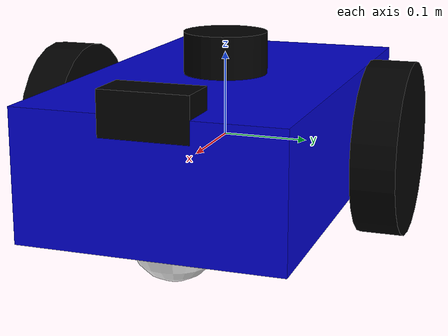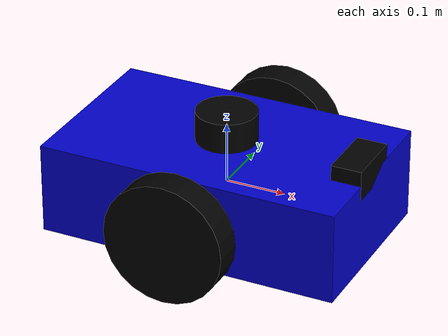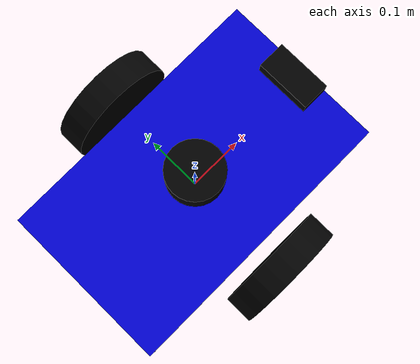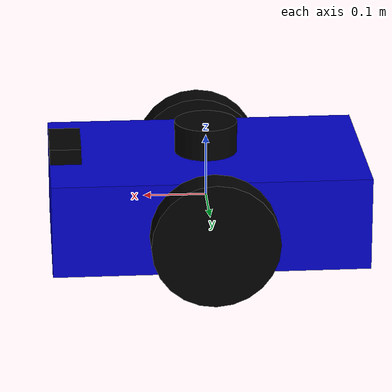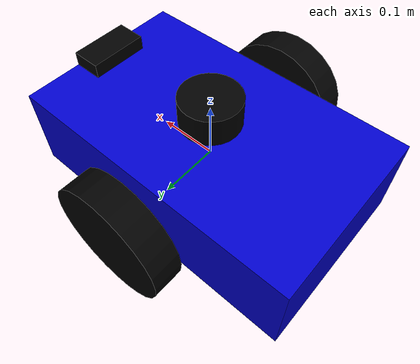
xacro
<?xml version="1.0"?>
<robot xmlns:xacro="http://www.ros.org/wiki/xacro" name="simple_robot">

  <!-- 定义机器人尺寸参数 -->
  <xacro:property name="base_length" value="0.5"/>
  <xacro:property name="base_width" value="0.3"/>
  <xacro:property name="base_height" value="0.15"/>
  <xacro:property name="wheel_radius" value="0.1"/>
  <xacro:property name="wheel_width" value="0.05"/>
  <xacro:property name="wheel_separation" value="0.4"/>
  <xacro:property name="caster_radius" value="0.05"/>

  <!-- 定义颜色 -->
  <material name="blue">
    <color rgba="0 0 0.8 1"/>
  </material>

  <material name="black">
    <color rgba="0 0 0 1"/>
  </material>

  <material name="white">
    <color rgba="1 1 1 1"/>
  </material>

  <!-- 基座链接 -->
  <link name="base_link">
    <visual>
      <geometry>
        <box size="${base_length} ${base_width} ${base_height}"/>
      </geometry>
      <material name="blue"/>
    </visual>
    <collision>
      <geometry>
        <box size="${base_length} ${base_width} ${base_height}"/>
      </geometry>
    </collision>
    <inertial>
      <mass value="5.0"/>
      <inertia ixx="0.1" ixy="0" ixz="0" iyy="0.1" iyz="0" izz="0.1"/>
    </inertial>
  </link>

  <!-- 右轮链接 -->
  <link name="right_wheel">
    <visual>
      <geometry>
        <cylinder radius="${wheel_radius}" length="${wheel_width}"/>
      </geometry>
      <material name="black"/>
    </visual>
    <collision>
      <geometry>
        <cylinder radius="${wheel_radius}" length="${wheel_width}"/>
      </geometry>
    </collision>
    <inertial>
      <mass value="1.0"/>
      <inertia ixx="0.01" ixy="0" ixz="0" iyy="0.01" iyz="0" izz="0.01"/>
    </inertial>
  </link>

  <!-- 左轮链接 -->
  <link name="left_wheel">
    <visual>
      <geometry>
        <cylinder radius="${wheel_radius}" length="${wheel_width}"/>
      </geometry>
      <material name="black"/>
    </visual>
    <collision>
      <geometry>
        <cylinder radius="${wheel_radius}" length="${wheel_width}"/>
      </geometry>
    </collision>
    <inertial>
      <mass value="1.0"/>
      <inertia ixx="0.01" ixy="0" ixz="0" iyy="0.01" iyz="0" izz="0.01"/>
    </inertial>
  </link>

  <!-- 前万向轮链接 -->
  <link name="front_caster">
    <visual>
      <geometry>
        <sphere radius="${caster_radius}"/>
      </geometry>
      <material name="white"/>
    </visual>
    <collision>
      <geometry>
        <sphere radius="${caster_radius}"/>
      </geometry>
    </collision>
    <inertial>
      <mass value="0.5"/>
      <inertia ixx="0.001" ixy="0" ixz="0" iyy="0.001" iyz="0" izz="0.001"/>
    </inertial>
  </link>

  <!-- 激光雷达链接 -->
  <link name="lidar_link">
    <visual>
      <geometry>
        <cylinder radius="0.05" length="0.05"/>
      </geometry>
      <material name="black"/>
    </visual>
    <collision>
      <geometry>
        <cylinder radius="0.05" length="0.05"/>
      </geometry>
    </collision>
    <inertial>
      <mass value="0.1"/>
      <inertia ixx="0.001" ixy="0" ixz="0" iyy="0.001" iyz="0" izz="0.001"/>
    </inertial>
  </link>

  <!-- 相机链接 -->
  <link name="camera_link">
    <visual>
      <geometry>
        <box size="0.05 0.1 0.05"/>
      </geometry>
      <material name="black"/>
    </visual>
    <collision>
      <geometry>
        <box size="0.05 0.1 0.05"/>
      </geometry>
    </collision>
    <inertial>
      <mass value="0.1"/>
      <inertia ixx="0.001" ixy="0" ixz="0" iyy="0.001" iyz="0" izz="0.001"/>
    </inertial>
  </link>

  <!-- 右轮关节 -->
  <joint name="right_wheel_joint" type="continuous">
    <parent link="base_link"/>
    <child link="right_wheel"/>
    <origin xyz="0 -${wheel_separation/2} 0" rpy="${pi/2} 0 0"/>
    <axis xyz="0 0 1"/>
  </joint>

  <!-- 左轮关节 -->
  <joint name="left_wheel_joint" type="continuous">
    <parent link="base_link"/>
    <child link="left_wheel"/>
    <origin xyz="0 ${wheel_separation/2} 0" rpy="${pi/2} 0 0"/>
    <axis xyz="0 0 1"/>
  </joint>

  <!-- 前万向轮关节 -->
  <joint name="front_caster_joint" type="fixed">
    <parent link="base_link"/>
    <child link="front_caster"/>
    <origin xyz="${base_length/3} 0 -${base_height/2}"/>
  </joint>

  <!-- 激光雷达关节 -->
  <joint name="lidar_joint" type="fixed">
    <parent link="base_link"/>
    <child link="lidar_link"/>
    <origin xyz="0 0 ${base_height/2 + 0.05/2}"/>
  </joint>

  <!-- 相机关节 -->
  <joint name="camera_joint" type="fixed">
    <parent link="base_link"/>
    <child link="camera_link"/>
    <origin xyz="${base_length/2 - 0.05/2} 0 ${base_height/2}"/>
  </joint>

  <!-- 差速驱动插件 -->
  <gazebo>
    <plugin name="diff_drive" filename="libgazebo_ros_diff_drive.so">
      <ros>
        <namespace>/simple_robot</namespace>
      </ros>
      <left_joint>left_wheel_joint</left_joint>
      <right_joint>right_wheel_joint</right_joint>
      <wheel_separation>${wheel_separation}</wheel_separation>
      <wheel_diameter>${wheel_radius * 2}</wheel_diameter>
      <max_wheel_torque>20</max_wheel_torque>
      <max_wheel_acceleration>1.0</max_wheel_acceleration>
      <publish_odom>true</publish_odom>
      <publish_odom_tf>true</publish_odom_tf>
      <publish_wheel_tf>true</publish_wheel_tf>
      <odometry_frame>odom</odometry_frame>
      <robot_base_frame>base_link</robot_base_frame>
    </plugin>
  </gazebo>

  <!-- 激光雷达插件 -->
  <gazebo reference="lidar_link">
    <sensor name="lidar" type="ray">
      <pose>0 0 0 0 0 0</pose>
      <visualize>true</visualize>
      <update_rate>10</update_rate>
      <ray>
        <scan>
          <horizontal>
            <samples>360</samples>
            <resolution>1</resolution>
            <min_angle>-3.14159</min_angle>
            <max_angle>3.14159</max_angle>
          </horizontal>
        </scan>
        <range>
          <min>0.1</min>
          <max>10.0</max>
          <resolution>0.01</resolution>
        </range>
      </ray>
      <plugin name="lidar_controller" filename="libgazebo_ros_ray_sensor.so">
        <ros>
          <namespace>/simple_robot</namespace>
          <remapping>~/out:=scan</remapping>
        </ros>
        <output_type>sensor_msgs/LaserScan</output_type>
        <frame_name>lidar_link</frame_name>
      </plugin>
    </sensor>
  </gazebo>

  <!-- 相机插件 -->
  <gazebo reference="camera_link">
    <sensor name="camera" type="camera">
      <pose>0 0 0 0 0 0</pose>
      <camera>
        <horizontal_fov>1.047</horizontal_fov>
        <image>
          <width>640</width>
          <height>480</height>
        </image>
        <clip>
          <near>0.1</near>
          <far>100</far>
        </clip>
      </camera>
      <update_rate>30</update_rate>
      <visualize>true</visualize>
      <plugin name="camera_controller" filename="libgazebo_ros_camera.so">
        <ros>
          <namespace>/simple_robot</namespace>
          <remapping>image_raw:=image</remapping>
          <remapping>camera_info:=camera_info</remapping>
        </ros>
        <frame_name>camera_link</frame_name>
      </plugin>
    </sensor>
  </gazebo>

  <!-- 设置材质颜色 -->
  <gazebo reference="base_link">
    <material>Gazebo/Blue</material>
  </gazebo>

  <gazebo reference="left_wheel">
    <material>Gazebo/Black</material>
  </gazebo>

  <gazebo reference="right_wheel">
    <material>Gazebo/Black</material>
  </gazebo>

  <gazebo reference="front_caster">
    <material>Gazebo/White</material>
    <mu1>0.0</mu1>
    <mu2>0.0</mu2>
  </gazebo>

  <gazebo reference="lidar_link">
    <material>Gazebo/Black</material>
  </gazebo>

  <gazebo reference="camera_link">
    <material>Gazebo/Black</material>
  </gazebo>

</robot>
